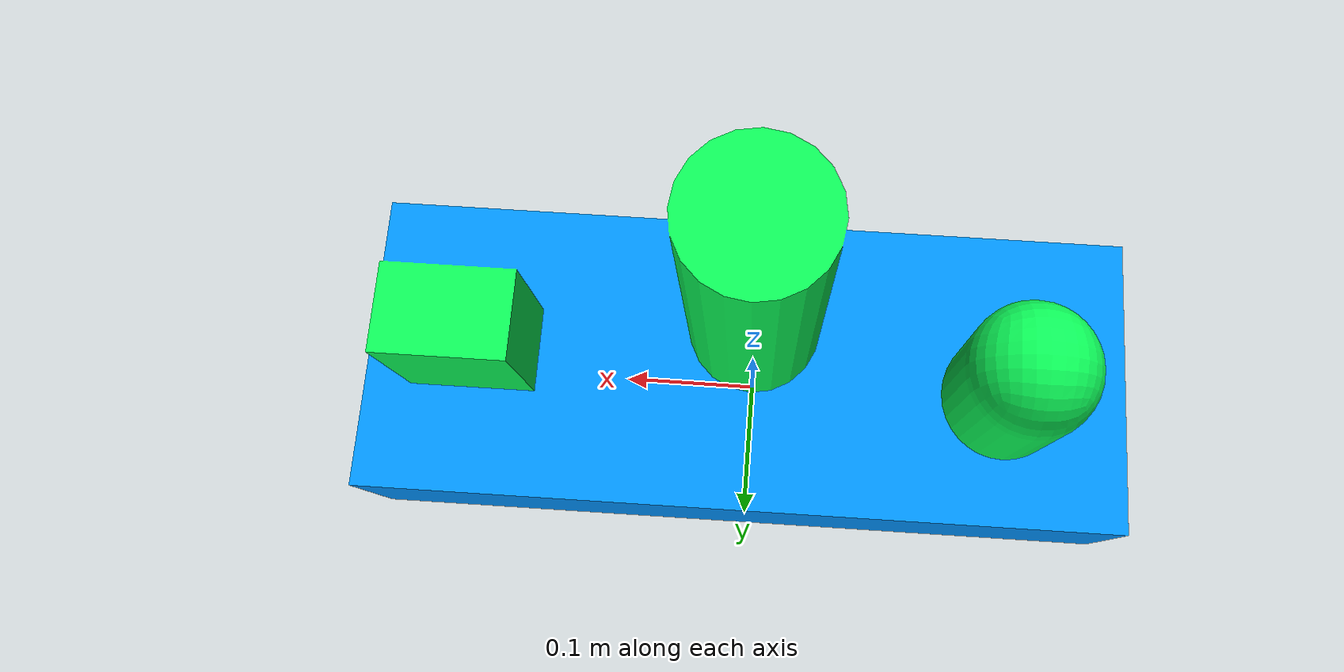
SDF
<?xml version="1.0" ?>
<sdf version="1.5">
    <model name="environment">
      <static>0</static>
      <link name="link">
       	<inertial>
          <pose>0 0 0 0 0 0</pose>
          <mass>1.0</mass>
          <inertia>
            <ixx>0.0385483333333</ixx>
            <ixy>000000</ixy>
            <ixz>0.000000</ixz>
            <iyy>0.107087533333</iyy>
            <iyz>0.000000</iyz>
            <izz>0.1243542</izz>
          </inertia>
        </inertial>s
        <collision name="collision">
          <pose>0 0 0 0 0 0</pose>
          <geometry>
            <mesh>
                <uri>model://environment/meshes/environment2.dae</uri>
                <scale>1 1 1</scale>
            </mesh>
          </geometry>
        </collision>
        <visual name="visual">
          <pose>0 0 0 0 0 0</pose>
          <geometry>
            <mesh>
                <uri>model://environment/meshes/environment2.dae</uri>
                <scale>1 1 1</scale>
            </mesh>
          </geometry>

        </visual>
      </link>
    </model>
</sdf>
